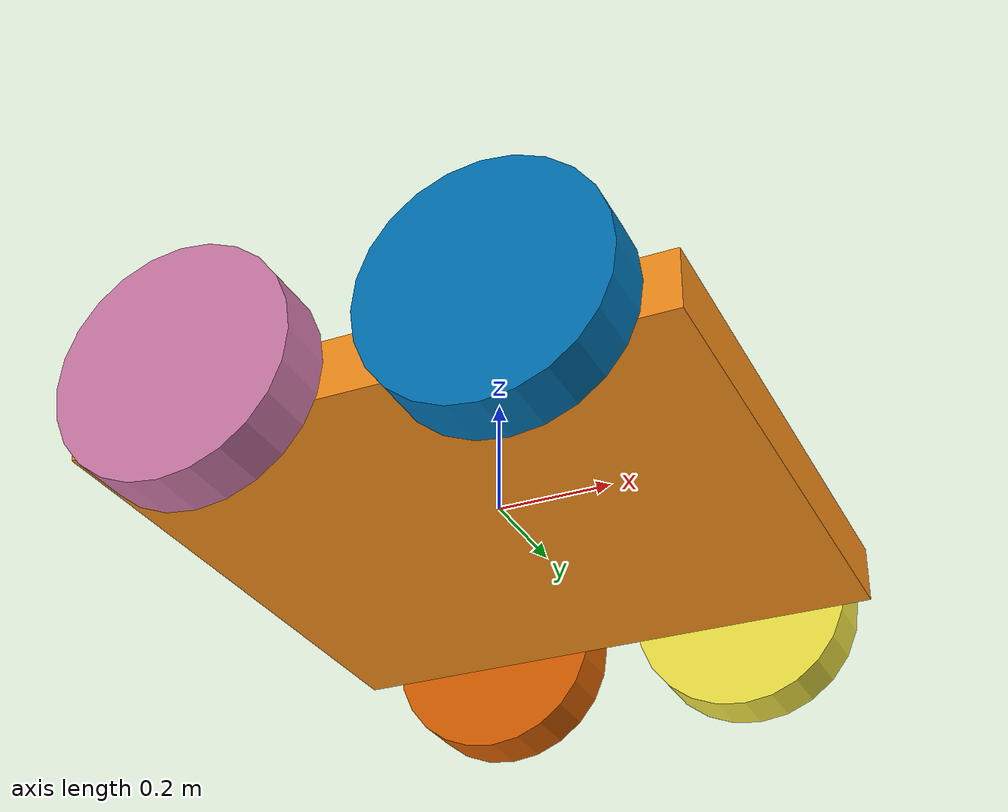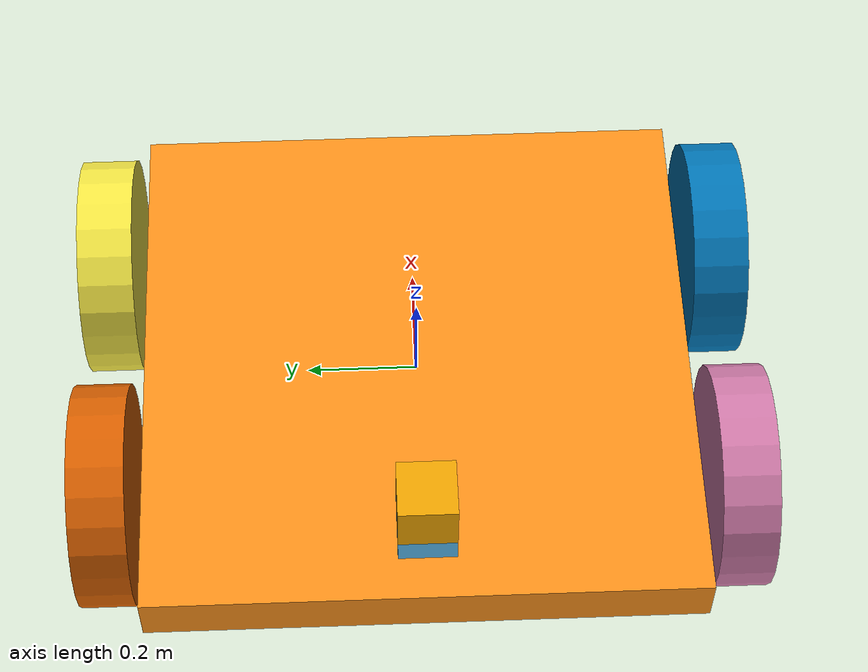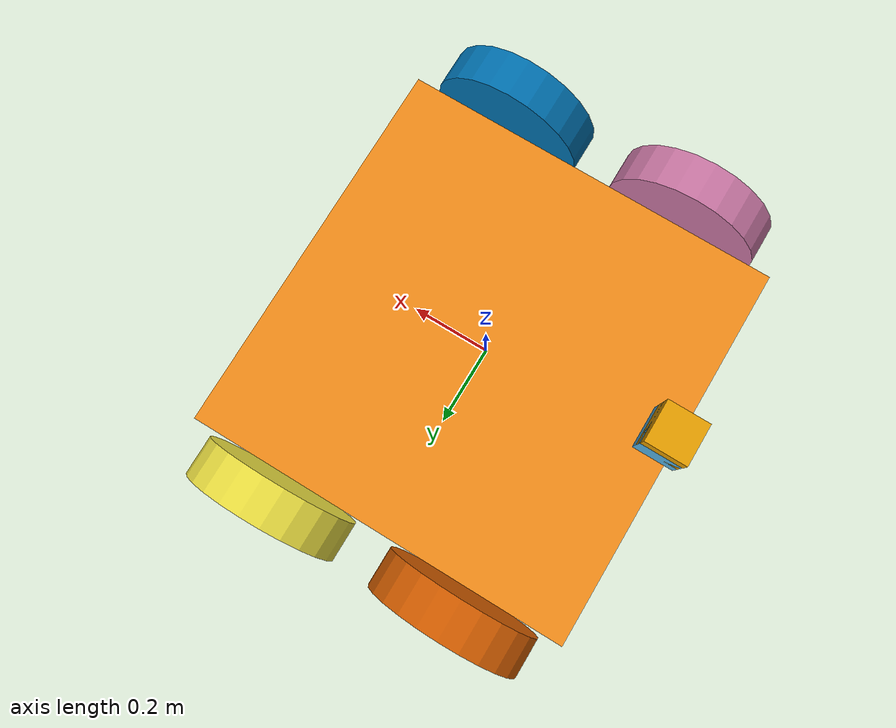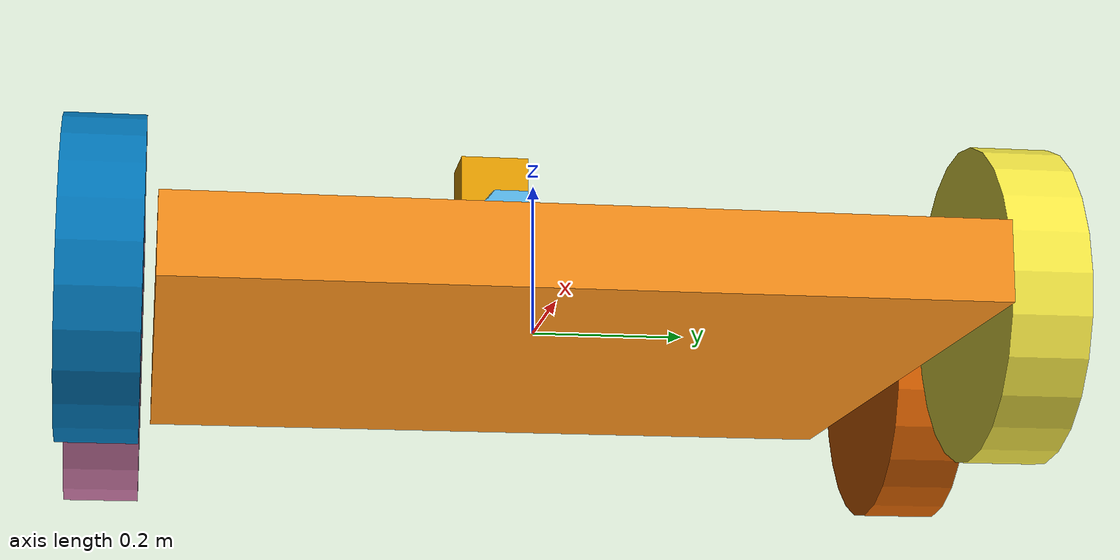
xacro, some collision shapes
<?xml version='1.0'?>

<robot name="rover" xmlns:xacro="http://www.ros.org/wiki/xacro">
<xacro:include filename="$(find mybot_description)/urdf/rover.gazebo" />
<xacro:include filename="$(find mybot_description)/urdf/materials.xacro" />
<xacro:include filename="$(find mybot_description)/urdf/macros.xacro" />

<!-- CAMERAS-->

<link name="camera">
        <collision name="collision_camera">
                <origin xyz="0 0 0" rpy="0 0 0" />
                <geometry>
                         <box size="0.1 0.1 0.1" />
                </geometry>
        </collision>

        <visual name="camera_visual">
                <origin xyz="0 0 0" rpy="0 0 0" />
                <geometry>
                        <box size="0.1 0.1 0.1" />
                </geometry>
        </visual>

        <inertial>
                <mass value="0.1" />
                <origin xyz="0 0 0.0001" rpy="0 0 0"/>
                <inertia ixx="0.0001" ixy="0.0" ixz="0.0"
                         iyy="0.0001" iyz="0.0"
                         izz="0.0001" />
        </inertial>
</link>

<link name="hokuyo">
    <collision>
      <origin xyz="0 0 0" rpy="0 0 0"/>
      <geometry>
         <box size="0.1 0.1 0.1"/>
      </geometry>
    </collision>

    <visual>
      <origin xyz="0 0 0" rpy="0 0 0"/>
      <geometry>
        <mesh filename="package://mybot_description/meshes/hokuyo.dae"/>
      </geometry>
    </visual>

    <inertial>
      <mass value="1e-5" />
      <origin xyz="0 0 0" rpy="0 0 0"/>
      <inertia ixx="1e-6" ixy="0" ixz="0" iyy="1e-6" iyz="0" izz="1e-6" />
    </inertial>
</link>

<!-- CHASSIS -->

  <link name="chassis">
    <pose>0 0 0.1 0 0 0</pose>
    <inertial>
      <mass value="10.0"/>
      <origin xyz="0.0 0 0.1" rpy=" 0 0 0"/>
      <inertia
          ixx="2.4" ixy="0" ixz="0"
          iyy="2.4" iyz="0"
          izz="2.4"
      />
    </inertial>

    <collision name='collision'>
      <geometry>
        <box size="1 1 .1"/>
      </geometry>
    </collision>

    <visual name='chassis_visual'>
      <origin xyz="0 0 0" rpy=" 0 0 0"/>
      <geometry>
        <box size="1 1 .1"/>
      </geometry>
    </visual>
  </link>

<!-- WHEEL LINKS -->
  <link name="left_wheel">
    <!--origin xyz="0.1 0.13 0.1" rpy="0 1.5707 1.5707"-->
    <collision name="collision">
      <origin xyz="0 0 0" rpy="0 1.5707 1.5707"/>
      <geometry>
        <cylinder radius="0.2" length="0.1"/>
      </geometry>
    </collision>
    <visual name="left_wheel_visual">
      <origin xyz="0 0 0" rpy="0 1.5707 1.5707"/>
      <geometry>
        <cylinder radius="0.2" length="0.1"/>
      </geometry>
    </visual>
    <inertial>
      <origin xyz="0 0 0" rpy="0 1.5707 1.5707"/>
      <mass value="5"/>
      <cylinder_inertia m="5" r="0.2" h="0.1"/>
      <inertia
        ixx="0.1083" ixy="0.0" ixz="0.0"
        iyy="0.1083" iyz="0.0"
        izz="0.1083"/>
    </inertial>
  </link>

  <link name="right_wheel">
    <!--origin xyz="0.1 -0.13 0.1" rpy="0 1.5707 1.5707"/-->
    <collision name="collision">
      <origin xyz="0 0 0" rpy="0 1.5707 1.5707"/>
      <geometry>
        <cylinder radius="0.2" length="0.1"/>
      </geometry>
    </collision>
    <visual name="right_wheel_visual">
      <origin xyz="0 0 0" rpy="0 1.5707 1.5707"/>
      <geometry>
        <cylinder radius="0.2" length="0.1"/>
      </geometry>
    </visual>
    <inertial>
      <origin xyz="0 0 0" rpy="0 1.5707 1.5707"/>
      <mass value="5"/>
      <cylinder_inertia m="5" r="0.2" h="0.1"/>
      <inertia
        ixx="0.1083" ixy="0.0" ixz="0.0"
        iyy="0.1083" iyz="0.0"
        izz="0.1083"/>
    </inertial>
  </link>

  <link name="left_fwheel">
    <!--origin xyz="-0.1 0.13 0.1" rpy="0 1.5707 1.5707"-->
    <collision name="collision">
      <origin xyz="0 0 0" rpy="0 1.5707 1.5707"/>
      <geometry>
        <cylinder radius="0.2" length="0.1"/>
      </geometry>
    </collision>
    <visual name="left_wheel_fvisual">
      <origin xyz="0 0 0" rpy="0 1.5707 1.5707"/>
      <geometry>
        <cylinder radius="0.2" length="0.1"/>
      </geometry>
    </visual>
    <inertial>
      <origin xyz="0 0 0" rpy="0 1.5707 1.5707"/>
      <mass value="5"/>
      <cylinder_inertia m="5" r="0.2" h="0.1"/>
      <inertia
        ixx="0.1083" ixy="0.0" ixz="0.0"
        iyy="0.1083" iyz="0.0"
        izz="0.1083"/>
    </inertial>
  </link>

  <link name="right_fwheel">
    <!--origin xyz="-0.1 -0.13 0.1" rpy="0 1.5707 1.5707"/-->
    <collision name="collision">
      <origin xyz="0 0 0" rpy="0 1.5707 1.5707"/>
      <geometry>
        <cylinder radius="0.2" length="0.1"/>
      </geometry>
    </collision>
    <visual name="right_wheel_fvisual">
      <origin xyz="0 0 0" rpy="0 1.5707 1.5707"/>
      <geometry>
        <cylinder radius="0.2" length="0.1"/>
      </geometry>
    </visual>
    <inertial>
      <origin xyz="0 0 0" rpy="0 1.5707 1.5707"/>
      <mass value="5"/>
      <cylinder_inertia m="5" r="0.2" h="0.1"/>
      <inertia
        ixx="0.1083" ixy="0.0" ixz="0.0"
        iyy="0.1083" iyz="0.0"
        izz="0.1083"/>
    </inertial>
  </link>

<!--JOINTS -->

<joint name="camera_joint" type="fixed">
        <origin xyz="-0.45 0 0.3" rpy="0 0 3.1414" />
        <child link="camera" />
        <parent link="chassis" />
</joint>
<joint name="hokuyo_joint" type="fixed">
        <origin xyz="-0.45 0 0.25" rpy="0 0 3.1414" />
        <child link="hokuyo" />
        <parent link="chassis" />
</joint>

  <joint type="continuous" name="left_wheel_hinge">
    <origin xyz="0.25 0.565 0" rpy="0 0 0"/>
    <child link="left_wheel"/>
    <parent link="chassis"/>
    <axis xyz="0 1 0" rpy="0 0 0"/>
    <limit effort="100" velocity="100"/>
    <joint_properties damping="0.0" friction="1.0"/>
  </joint>

  <joint type="continuous" name="right_wheel_hinge">
    <origin xyz="0.25 -0.565 0" rpy="0 0 0"/>
    <child link="right_wheel"/>
    <parent link="chassis"/>
    <axis xyz="0 1 0" rpy="0 0 0"/>
    <limit effort="100" velocity="100"/>
    <joint_properties damping="0.0" friction="1.0"/>
  </joint>

 <joint type="continuous" name="left_wheel_fhinge">
    <origin xyz="-0.25 0.565 0" rpy="0 0 0"/>
    <child link="left_fwheel"/>
    <parent link="chassis"/>
    <axis xyz="0 1 0" rpy="0 0 0"/>
    <limit effort="100" velocity="100"/>
    <joint_properties damping="0.0" friction="1.0"/>
  </joint>

  <joint type="continuous" name="right_wheel_fhinge">
    <origin xyz="-0.25 -0.565 0" rpy="0 0 0"/>
    <child link="right_fwheel"/>
    <parent link="chassis"/>
    <axis xyz="0 1 0" rpy="0 0 0"/>
    <limit effort="100" velocity="100"/>
    <joint_properties damping="0.0" friction="1"/>
  </joint>

<!-- END -->

</robot>
